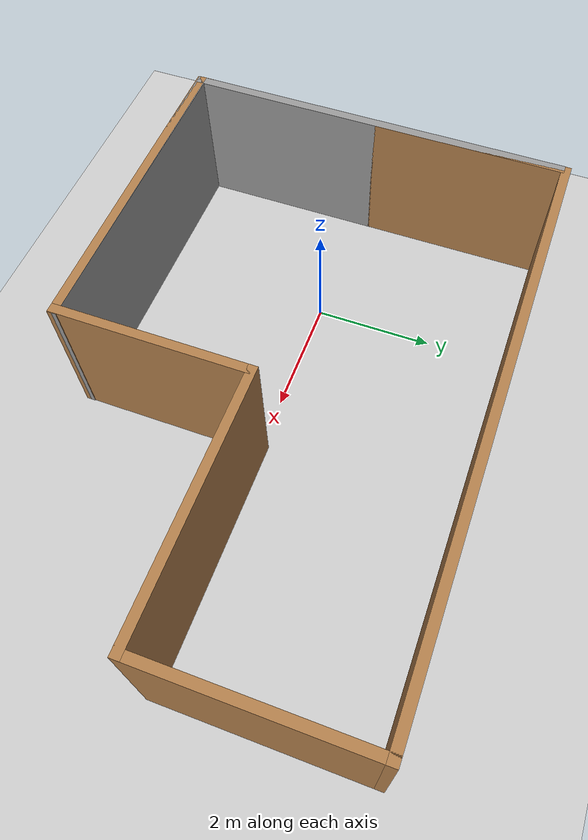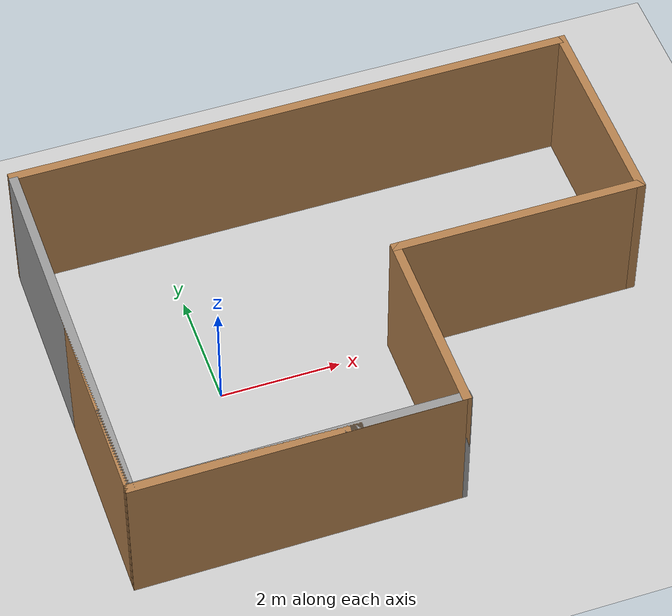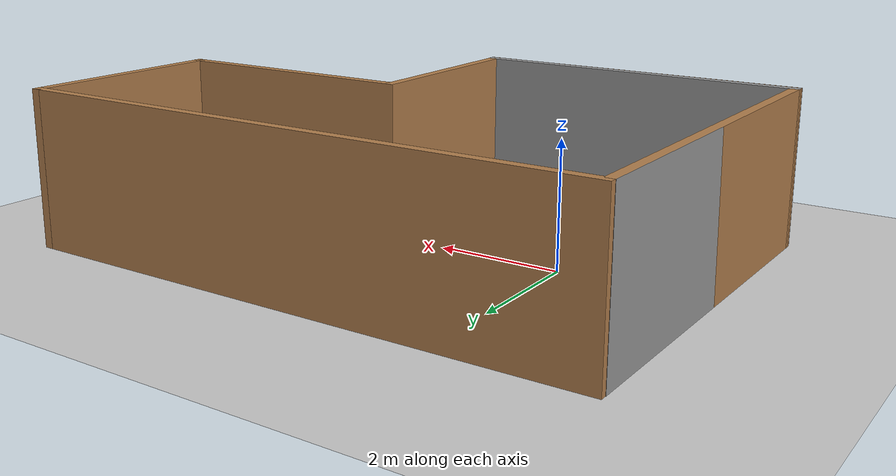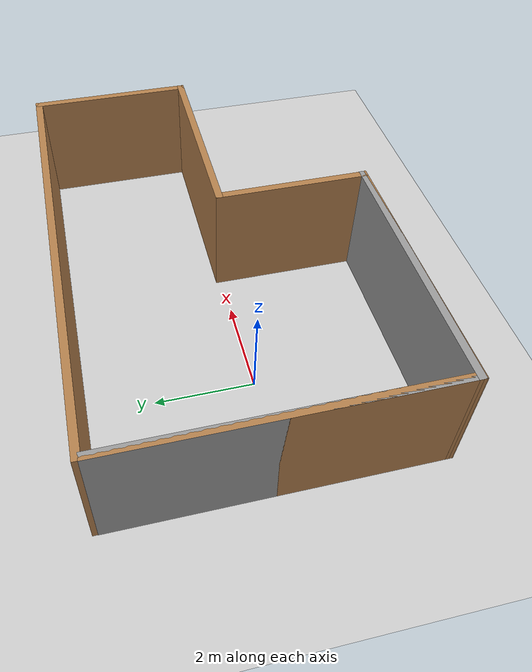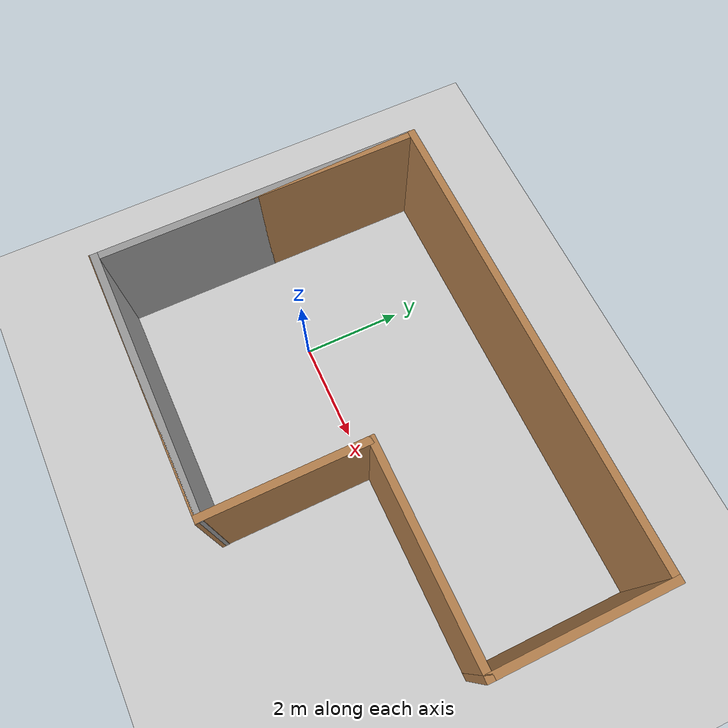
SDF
<sdf version="1.7">
 <world name="default">
  <light name="sun" type="directional">
   <pose>0 0 10 0 -0 0</pose>
   <diffuse>0.8 0.8 0.8 1</diffuse>
   <specular>0.2 0.2 0.2 1</specular>
   <attenuation>
    <range>1000</range>
    <constant>0.9</constant>
    <linear>0.01</linear>
    <quadratic>0.001</quadratic>
   </attenuation>
   <direction>-0.5 0.1 -0.9</direction>
   <spot><inner_angle>0</inner_angle><outer_angle>0</outer_angle><falloff>0</falloff></spot>
  </light>
  <model name="ground_plane">
   <static>1</static>
   <link name="link">
    <collision name="collision">
     <geometry><plane><normal>0 0 1</normal><size>100 100</size></plane></geometry>
     <surface>
      <contact><collide_bitmask>65535</collide_bitmask></contact>
      <friction><ode><mu>100</mu><mu2>50</mu2></ode></friction>
     </surface>
    </collision>
    <visual name="visual">
     <cast_shadows>0</cast_shadows>
     <geometry><plane><normal>0 0 1</normal><size>100 100</size></plane></geometry>
     <material>
      <script><uri>file://media/materials/scripts/gazebo.material</uri><name>Gazebo/Grey</name></script>
     </material>
    </visual>
   </link>
  </model>
  <gravity>0 0 -9.8</gravity>
  <magnetic_field>6e-06 2.3e-05 -4.2e-05</magnetic_field>
  <atmosphere type="adiabatic"/>
  <physics type="ode">
   <max_step_size>0.001</max_step_size>
   <real_time_factor>1</real_time_factor>
   <real_time_update_rate>1000</real_time_update_rate>
  </physics>
  <scene><ambient>0.4 0.4 0.4 1</ambient><background>0.7 0.7 0.7 1</background><shadows>1</shadows></scene>
  <spherical_coordinates>
   <surface_model>EARTH_WGS84</surface_model>
   <latitude_deg>0</latitude_deg>
   <longitude_deg>0</longitude_deg>
   <elevation>0</elevation>
   <heading_deg>0</heading_deg>
  </spherical_coordinates>
  <model name="Untitled">
   <pose>2.35833 0.166035 0 0 -0 0</pose>
   <link name="Wall_0">
    <collision name="Wall_0_Collision">
     <geometry><box><size>5.41523 0.15 2.5</size></box></geometry>
     <pose>0 0 1.25 0 -0 0</pose>
    </collision>
    <visual name="Wall_0_Visual">
     <pose>0 0 1.25 0 -0 0</pose>
     <geometry><box><size>5.41523 0.15 2.5</size></box></geometry>
     <material>
      <script><uri>file://media/materials/scripts/gazebo.material</uri><name>Gazebo/Wood</name></script>
      <ambient>1 1 1 1</ambient>
     </material>
     <meta><layer>0</layer></meta>
    </visual>
    <pose>-2.04489 -3.22489 0 0 -0 -3.1387</pose>
   </link>
   <link name="Wall_1">
    <collision name="Wall_1_Collision">
     <geometry><box><size>5.41521 0.15 2.5</size></box></geometry>
     <pose>0 0 1.25 0 -0 0</pose>
    </collision>
    <visual name="Wall_1_Visual">
     <pose>0 0 1.25 0 -0 0</pose>
     <geometry><box><size>5.41521 0.15 2.5</size></box></geometry>
     <material>
      <script><uri>file://media/materials/scripts/gazebo.material</uri><name>Gazebo/Grey</name></script>
      <ambient>1 1 1 1</ambient>
     </material>
     <meta><layer>0</layer></meta>
    </visual>
    <pose>-2.04489 -3.21729 0 0 -0 0</pose>
   </link>
   <link name="Wall_10">
    <collision name="Wall_10_Collision">
     <geometry><box><size>4.25 0.15 2.5</size></box></geometry>
     <pose>0 0 1.25 0 -0 0</pose>
    </collision>
    <visual name="Wall_10_Visual">
     <pose>0 0 1.25 0 -0 0</pose>
     <geometry><box><size>4.25 0.15 2.5</size></box></geometry>
     <material>
      <script><uri>file://media/materials/scripts/gazebo.material</uri><name>Gazebo/Wood</name></script>
      <ambient>1 1 1 1</ambient>
     </material>
     <meta><layer>0</layer></meta>
    </visual>
    <pose>2.62771 -0.117288 0 0 -0 0</pose>
   </link>
   <link name="Wall_11">
    <collision name="Wall_11_Collision">
     <geometry><box><size>3.5 0.15 2.5</size></box></geometry>
     <pose>0 0 1.25 0 -0 0</pose>
    </collision>
    <visual name="Wall_11_Visual">
     <pose>0 0 1.25 0 -0 0</pose>
     <geometry><box><size>3.5 0.15 2.5</size></box></geometry>
     <material>
      <script><uri>file://media/materials/scripts/gazebo.material</uri><name>Gazebo/Wood</name></script>
      <ambient>1 1 1 1</ambient>
     </material>
     <meta><layer>0</layer></meta>
    </visual>
    <pose>4.67771 1.55771 0 0 -0 1.5708</pose>
   </link>
   <link name="Wall_12">
    <collision name="Wall_12_Collision">
     <geometry><box><size>9.5 0.15 2.5</size></box></geometry>
     <pose>0 0 1.25 0 -0 0</pose>
    </collision>
    <visual name="Wall_12_Visual">
     <pose>0 0 1.25 0 -0 0</pose>
     <geometry><box><size>9.5 0.15 2.5</size></box></geometry>
     <material>
      <script><uri>file://media/materials/scripts/gazebo.material</uri><name>Gazebo/Wood</name></script>
      <ambient>1 1 1 1</ambient>
     </material>
     <meta><layer>0</layer></meta>
    </visual>
    <pose>0.002713 3.23271 0 0 -0 3.14159</pose>
   </link>
   <link name="Wall_5">
    <collision name="Wall_5_Collision">
     <geometry><box><size>3.25 0.15 2.5</size></box></geometry>
     <pose>0 0 1.25 0 -0 0</pose>
    </collision>
    <visual name="Wall_5_Visual">
     <pose>0 0 1.25 0 -0 0</pose>
     <geometry><box><size>3.25 0.15 2.5</size></box></geometry>
     <material>
      <script><uri>file://media/materials/scripts/gazebo.material</uri><name>Gazebo/Wood</name></script>
      <ambient>1 1 1 1</ambient>
     </material>
     <meta><layer>0</layer></meta>
    </visual>
    <pose>0.577713 -1.66729 0 0 -0 1.5708</pose>
   </link>
   <link name="Wall_7">
    <collision name="Wall_7_Collision">
     <geometry><box><size>6.5 0.15 2.5</size></box></geometry>
     <pose>0 0 1.25 0 -0 0</pose>
    </collision>
    <visual name="Wall_7_Visual">
     <pose>0 0 1.25 0 -0 0</pose>
     <geometry><box><size>6.5 0.15 2.5</size></box></geometry>
     <material>
      <script><uri>file://media/materials/scripts/gazebo.material</uri><name>Gazebo/Grey</name></script>
      <ambient>1 1 1 1</ambient>
     </material>
     <meta><layer>0</layer></meta>
    </visual>
    <pose>-4.6775 -0.042288 0 0 -0 1.5708</pose>
   </link>
   <link name="Wall_8">
    <collision name="Wall_8_Collision">
     <geometry><box><size>6.5 0.15 2.5</size></box></geometry>
     <pose>0 0 1.25 0 -0 0</pose>
    </collision>
    <visual name="Wall_8_Visual">
     <pose>0 0 1.25 0 -0 0</pose>
     <geometry><box><size>6.5 0.15 2.5</size></box></geometry>
     <material>
      <script><uri>file://media/materials/scripts/gazebo.material</uri><name>Gazebo/Wood</name></script>
      <ambient>1 1 1 1</ambient>
     </material>
     <meta><layer>0</layer></meta>
    </visual>
    <pose>-4.6775 -0.042288 0 0 -0 -1.5708</pose>
   </link>
   <static>1</static>
  </model>
 </world>
</sdf>
